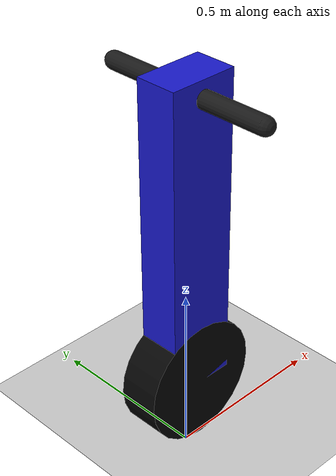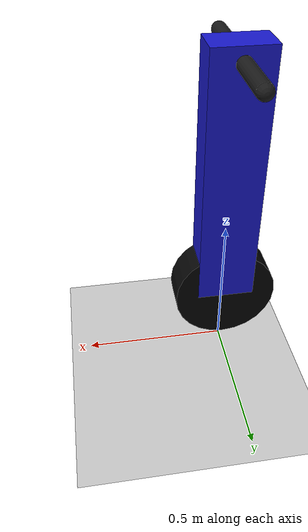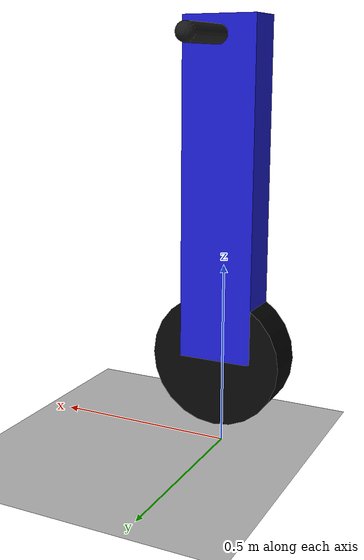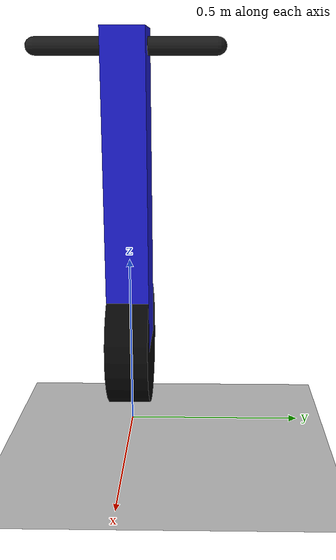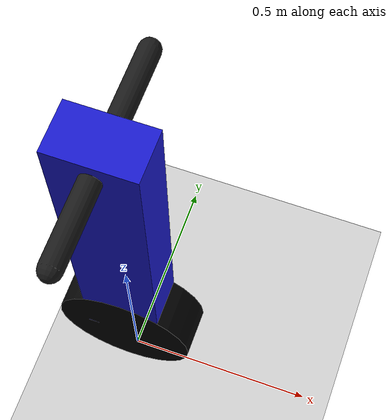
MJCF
<mujoco model="simple_segway_inverted_pendulum">

  <compiler angle="radian"/>
  <option timestep="0.002" gravity="0 0 -9.81" integrator="RK4"/>

  <default>
    <joint damping="0.01" armature="0.001"/>
    <geom friction="1.2 0.01 0.001"/>
  </default>

  <worldbody>
    <light pos="0 0 5" dir="0 0 -1"/>
    <geom name="ground"
          type="plane"
          size="10 10 0.1"
          rgba="0.8 0.8 0.8 1"/>

    <!-- Main Segway body -->
    <body name="segway" pos="0 0 0.25">

      <!-- The whole Segway can move in the x-z plane -->
      <joint name="x_slide" type="slide" axis="1 0 0"/>
      <joint name="body_pitch" type="hinge" axis="0 1 0"/>

      <!-- Wheel visual -->
      <geom name="wheel"
            type="cylinder"
            size="0.18 0.06"
            pos="0 0 0"
            euler="1.5708 0 0"
            mass="0.5"
            rgba="0.02 0.02 0.02 1"/>

      <!-- Upright body -->
      <geom name="body"
            type="box"
            size="0.10 0.06 0.45"
            pos="0 0 0.45"
            mass="1.5"
            rgba="0.1 0.1 0.8 1"/>

      <!-- Handlebar -->
      <geom name="handle"
            type="capsule"
            fromto="0 -0.25 0.85 0 0.25 0.85"
            size="0.025"
            mass="0.1"
            rgba="0.1 0.1 0.1 1"/>

    </body>
  </worldbody>

  <actuator>
    <!-- This applies horizontal force, like the simple cart-pole model -->
    <motor name="drive_motor"
           joint="x_slide"
           gear="1"
           ctrllimited="true"
           ctrlrange="-100 100"/>
  </actuator>

</mujoco>
